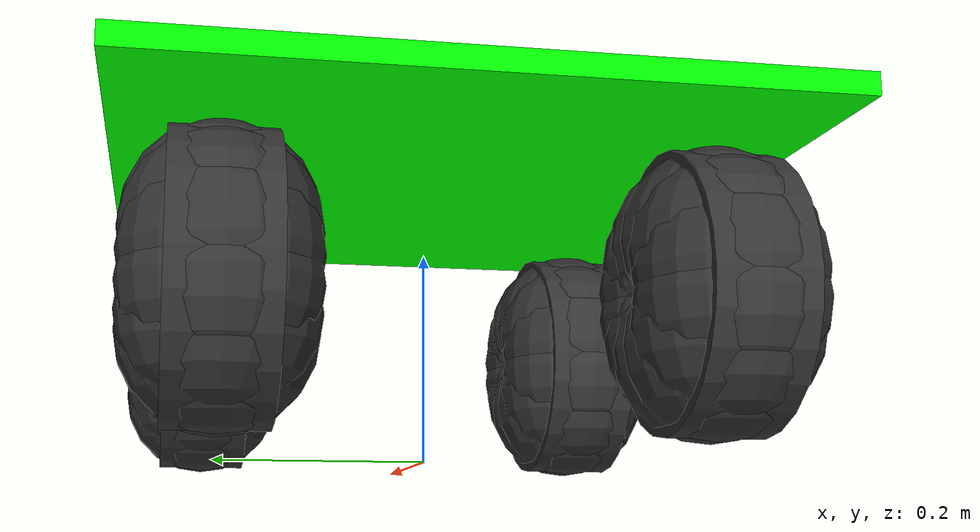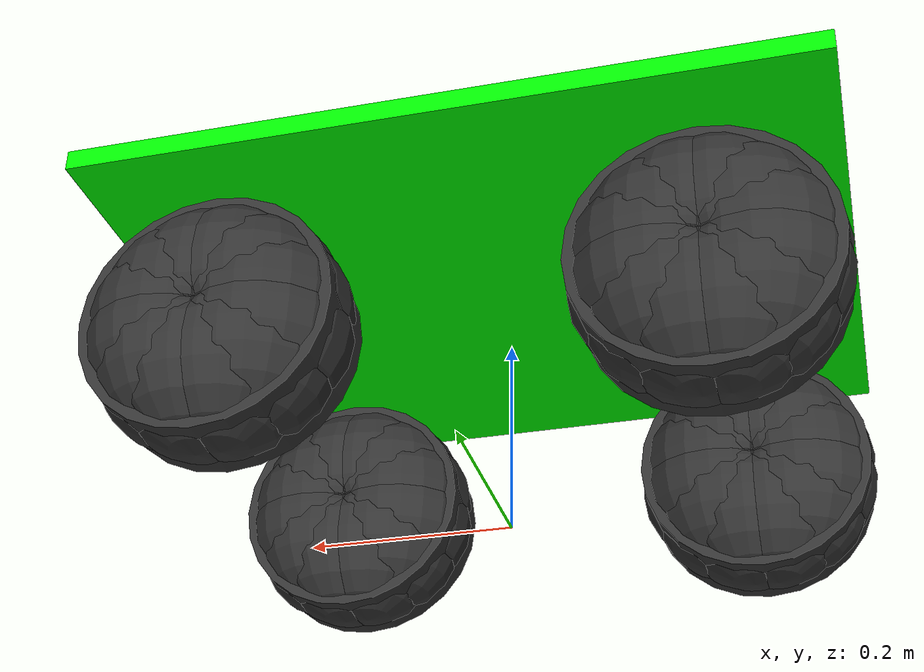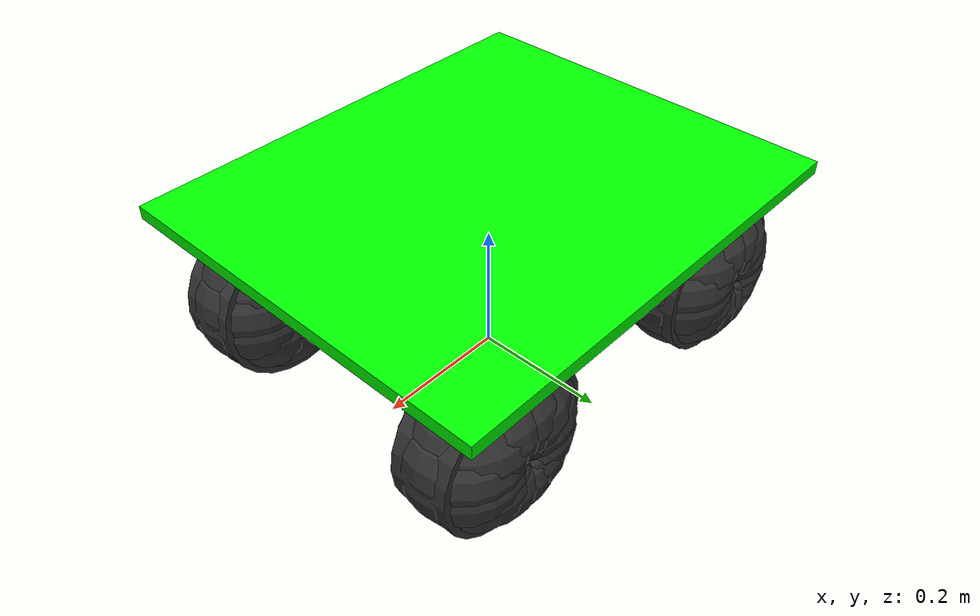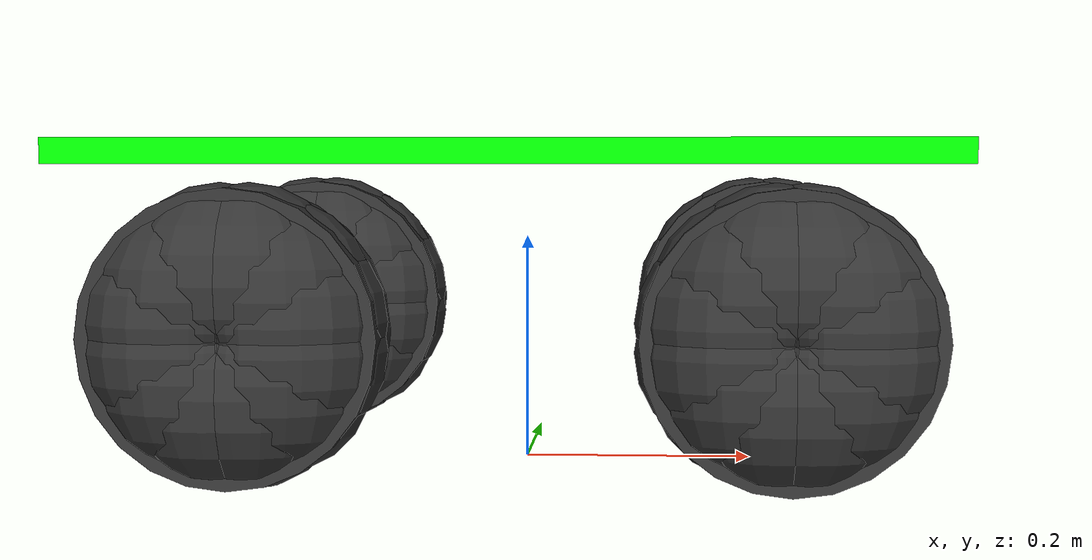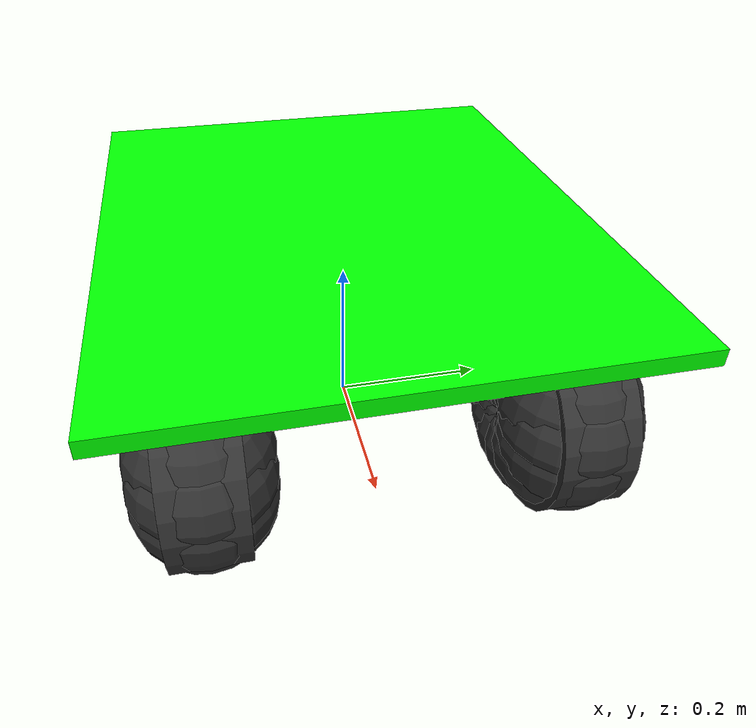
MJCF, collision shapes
<mujoco model="summit_xls">
    <compiler autolimits="true" angle="radian" inertiafromgeom="true"/>

    <asset>
        <mesh name="summit_xls_chapas_inox_tapas"   file="meshes/summit_xls/base_mobile_brand.stl" scale="1.0 1.0 0.7"/>
        <mesh name="summit_xls_chassis"             file="meshes/summit_xls/base_mobile.stl" scale="1.0 1.0 0.7"/>
        <mesh name="summit_xls_omni_wheel_1"        file="meshes/wheels/omni_wheel_1.stl"/>
        <mesh name="summit_xls_omni_wheel_2"        file="meshes/wheels/omni_wheel_2.stl"/>
    </asset>

    <worldbody>
        <!-- Summit XL Steel Mobile Base -->
            <!-- BASE_LINK -->
            <body name="base" pos="0 0 0.127">
                <inertial pos="0 0 0" quat="1 0 0 0" mass="125.0" diaginertia="1.391 6.853 6.125" />
                <geom type="mesh" rgba="0 0 0 1" mesh="summit_xls_chassis" contype="0" conaffinity="0" group="1"/>
                <geom type="box" size="0.35 0.3 0.01" pos="0.0 0 0.148566" quat="1 0 0 0" rgba="0 1 0 0" contype="1" conaffinity="1"/>

                <!-- CHAPAS INOX TAPAS -->
                <geom type="mesh" pos="0.0 0 0.155" quat="1 0 0 0" rgba="0.5 0.5 0.5 1" mesh="summit_xls_chapas_inox_tapas" contype="0" conaffinity="0" group="2"/>

                <!-- Battery -->

                <!-- Wheels -->
                <body name="front_right_wheel_intermediate_link" pos="0.2225 -0.2045 0">
                    <inertial pos="0 0 0" quat="0.707107 0 0 0.707107" mass="6.5" diaginertia="0.0524193 0.0303095 0.0303095" />
                    <joint name="front_right_wheel_rolling_joint" pos="0 0 0" axis="0 1 0" />
                    <geom size="0.120 0.0435" quat="0.707107 0.707107 0 0" type="cylinder" rgba="0.2 0.2 0.2 0.5" contype="1" conaffinity="0" group="3" />
                    <geom type="mesh" mesh="summit_xls_omni_wheel_2" contype="0" conaffinity="0" group="2" rgba="0.2 0.2 0.2 1"/>

                    <body name="front_right_roller_0_link" pos="0.04385159698893431 0.0 0.011749999999999998">
                        <joint name="front_right_slipping_0_joint" type="hinge" pos="0 0 0" axis="-0.006296806022131382 0.0435 0.023499999999999997" damping="0.1" limited="false" actuatorfrclimited="false"/>
                        <inertial pos="0 0 0" quat="0.711549 0.711549 0 0 " mass="0.001" diaginertia="0.00001 0.00001 0.00001" />
                        <geom size="0.08" quat="1 0 0 0" type="sphere" rgba="0.2 0.2 0.2 1" contype="1" conaffinity="0" group="3"/>
                    </body>

                    <body name="front_right_roller_1_link" pos="0.03210159698893431 0.0 0.032101596988934306">
                        <joint name="front_right_slipping_1_joint" type="hinge" pos="0 0 0" axis="-0.01720319397786861 0.0435 0.017203193977868615" damping="0.1" limited="false" actuatorfrclimited="false"/>
                        <inertial pos="0 0 0" quat="0.711549 0.711549 0 0 " mass="0.001" diaginertia="0.00001 0.00001 0.00001" />
                        <geom size="0.08" quat="1 0 0 0" type="sphere" rgba="0.2 0.2 0.2 1" contype="1" conaffinity="0" group="3"/>
                    </body>

                    <body name="front_right_roller_2_link" pos="0.011750000000000005 0.0 0.0438515969889343">
                        <joint name="front_right_slipping_2_joint" type="hinge" pos="0 0 0" axis="-0.023500000000000004 0.0435 0.006296806022131389" damping="0.1" limited="false" actuatorfrclimited="false"/>
                        <inertial pos="0 0 0" quat="0.711549 0.711549 0 0 " mass="0.001" diaginertia="0.00001 0.00001 0.00001" />
                        <geom size="0.08" quat="1 0 0 0" type="sphere" rgba="0.2 0.2 0.2 1" contype="1" conaffinity="0" group="3"/>
                    </body>

                    <body name="front_right_roller_3_link" pos="-0.011749999999999993 0.0 0.04385159698893431">
                        <joint name="front_right_slipping_3_joint" type="hinge" pos="0 0 0" axis="-0.023499999999999993 0.0435 -0.006296806022131382" damping="0.1" limited="false" actuatorfrclimited="false"/>
                        <inertial pos="0 0 0" quat="0.711549 0.711549 0 0 " mass="0.001" diaginertia="0.00001 0.00001 0.00001" />
                        <geom size="0.08" quat="1 0 0 0" type="sphere" rgba="0.2 0.2 0.2 1" contype="1" conaffinity="0" group="3"/>
                    </body>

                    <body name="front_right_roller_4_link" pos="-0.0321015969889343 0.0 0.03210159698893432">
                        <joint name="front_right_slipping_4_joint" type="hinge" pos="0 0 0" axis="-0.01720319397786862 0.0435 -0.0172031939778686" damping="0.1" limited="false" actuatorfrclimited="false"/>
                        <inertial pos="0 0 0" quat="0.711549 0.711549 0 0 " mass="0.001" diaginertia="0.00001 0.00001 0.00001" />
                        <geom size="0.08" quat="1 0 0 0" type="sphere" rgba="0.2 0.2 0.2 1" contype="1" conaffinity="0" group="3"/>
                    </body>

                    <body name="front_right_roller_5_link" pos="-0.0438515969889343 0.0 0.011750000000000012">
                        <joint name="front_right_slipping_5_joint" type="hinge" pos="0 0 0" axis="-0.006296806022131389 0.0435 -0.02350000000000001" damping="0.1" limited="false" actuatorfrclimited="false"/>
                        <inertial pos="0 0 0" quat="0.711549 0.711549 0 0 " mass="0.001" diaginertia="0.00001 0.00001 0.00001" />
                        <geom size="0.08" quat="1 0 0 0" type="sphere" rgba="0.2 0.2 0.2 1" contype="1" conaffinity="0" group="3"/>
                    </body>

                    <body name="front_right_roller_6_link" pos="-0.043851596988934316 0.0 -0.011749999999999991">
                        <joint name="front_right_slipping_6_joint" type="hinge" pos="0 0 0" axis="0.006296806022131375 0.0435 -0.023499999999999993" damping="0.1" limited="false" actuatorfrclimited="false"/>
                        <inertial pos="0 0 0" quat="0.711549 0.711549 0 0 " mass="0.001" diaginertia="0.00001 0.00001 0.00001" />
                        <geom size="0.08" quat="1 0 0 0" type="sphere" rgba="0.2 0.2 0.2 1" contype="1" conaffinity="0" group="3"/>
                    </body>

                    <body name="front_right_roller_7_link" pos="-0.03210159698893432 0.0 -0.03210159698893429">
                        <joint name="front_right_slipping_7_joint" type="hinge" pos="0 0 0" axis="0.017203193977868604 0.0435 -0.017203193977868618" damping="0.1" limited="false" actuatorfrclimited="false"/>
                        <inertial pos="0 0 0" quat="0.711549 0.711549 0 0 " mass="0.001" diaginertia="0.00001 0.00001 0.00001" />
                        <geom size="0.08" quat="1 0 0 0" type="sphere" rgba="0.2 0.2 0.2 1" contype="1" conaffinity="0" group="3"/>
                    </body>

                    <body name="front_right_roller_8_link" pos="-0.011750000000000014 0.0 -0.0438515969889343">
                        <joint name="front_right_slipping_8_joint" type="hinge" pos="0 0 0" axis="0.023500000000000014 0.0435 -0.006296806022131396" damping="0.1" limited="false" actuatorfrclimited="false"/>
                        <inertial pos="0 0 0" quat="0.711549 0.711549 0 0 " mass="0.001" diaginertia="0.00001 0.00001 0.00001" />
                        <geom size="0.08" quat="1 0 0 0" type="sphere" rgba="0.2 0.2 0.2 1" contype="1" conaffinity="0" group="3"/>
                    </body>

                    <body name="front_right_roller_9_link" pos="0.01174999999999998 0.0 -0.043851596988934316">
                        <joint name="front_right_slipping_9_joint" type="hinge" pos="0 0 0" axis="0.023499999999999976 0.0435 0.006296806022131368" damping="0.1" limited="false" actuatorfrclimited="false"/>
                        <inertial pos="0 0 0" quat="0.711549 0.711549 0 0 " mass="0.001" diaginertia="0.00001 0.00001 0.00001" />
                        <geom size="0.08" quat="1 0 0 0" type="sphere" rgba="0.2 0.2 0.2 1" contype="1" conaffinity="0" group="3"/>
                    </body>

                    <body name="front_right_roller_10_link" pos="0.032101596988934285 0.0 -0.032101596988934326">
                        <joint name="front_right_slipping_10_joint" type="hinge" pos="0 0 0" axis="0.017203193977868635 0.0435 0.01720319397786861" damping="0.1" limited="false" actuatorfrclimited="false"/>
                        <inertial pos="0 0 0" quat="0.711549 0.711549 0 0 " mass="0.001" diaginertia="0.00001 0.00001 0.00001" />
                        <geom size="0.08" quat="1 0 0 0" type="sphere" rgba="0.2 0.2 0.2 1" contype="1" conaffinity="0" group="3"/>
                    </body>

                    <body name="front_right_roller_11_link" pos="0.0438515969889343 0.0 -0.01175000000000001">
                        <joint name="front_right_slipping_11_joint" type="hinge" pos="0 0 0" axis="0.006296806022131396 0.0435 0.02350000000000002" damping="0.1" limited="false" actuatorfrclimited="false"/>
                        <inertial pos="0 0 0" quat="0.711549 0.711549 0 0 " mass="0.001" diaginertia="0.00001 0.00001 0.00001" />
                        <geom size="0.08" quat="1 0 0 0" type="sphere" rgba="0.2 0.2 0.2 1" contype="1" conaffinity="0" group="3"/>
                    </body>
                </body>

                <body name="front_left_wheel_intermediate_link" pos="0.2225 0.2045 0">
                    <inertial pos="0 0 0" quat="0.707107 0 0 0.707107" mass="6.5" diaginertia="0.0524193 0.0303095 0.0303095" />
                    <joint name="front_left_wheel_rolling_joint" pos="0 0 0" axis="0 1 0" />
                    <geom size="0.120 0.0435" quat="0.707107 0.707107 0 0" type="cylinder" rgba="0.2 0.2 0.2 0.5" contype="1" conaffinity="0" group="3"/>
                    <geom type="mesh" mesh="summit_xls_omni_wheel_1" contype="0" conaffinity="0" group="2" rgba="0.2 0.2 0.2 1"/>

                    <body name="front_left_roller_0_link" pos="0.0438515969889343 0.0 -0.01175000000000001">
                        <joint name="front_left_slipping_0_joint" type="hinge" pos="0 0 0" axis="-0.006296806022131396 0.0435 -0.02350000000000002" damping="0.1" limited="false" actuatorfrclimited="false"/>
                        <inertial pos="0 0 0" quat="0.711549 0.711549 0 0 " mass="0.001" diaginertia="0.00001 0.00001 0.00001" />
                        <geom size="0.08" quat="1 0 0 0" type="sphere" rgba="0.2 0.2 0.2 1" contype="1" conaffinity="0" group="3"/>
                    </body>

                    <body name="front_left_roller_1_link" pos="0.04385159698893431 0.0 0.011749999999999998">
                        <joint name="front_left_slipping_1_joint" type="hinge" pos="0 0 0" axis="0.006296806022131382 0.0435 -0.023499999999999997" damping="0.1" limited="false" actuatorfrclimited="false"/>
                        <inertial pos="0 0 0" quat="0.711549 0.711549 0 0 " mass="0.001" diaginertia="0.00001 0.00001 0.00001" />
                        <geom size="0.08" quat="1 0 0 0" type="sphere" rgba="0.2 0.2 0.2 1" contype="1" conaffinity="0" group="3"/>
                    </body>

                    <body name="front_left_roller_2_link" pos="0.03210159698893431 0.0 0.032101596988934306">
                        <joint name="front_left_slipping_2_joint" type="hinge" pos="0 0 0" axis="0.01720319397786861 0.0435 -0.017203193977868615" damping="0.1" limited="false" actuatorfrclimited="false"/>
                        <inertial pos="0 0 0" quat="0.711549 0.711549 0 0 " mass="0.001" diaginertia="0.00001 0.00001 0.00001" />
                        <geom size="0.08" quat="1 0 0 0" type="sphere" rgba="0.2 0.2 0.2 1" contype="1" conaffinity="0" group="3"/>
                    </body>

                    <body name="front_left_roller_3_link" pos="0.011750000000000005 0.0 0.0438515969889343">
                        <joint name="front_left_slipping_3_joint" type="hinge" pos="0 0 0" axis="0.023500000000000004 0.0435 -0.006296806022131389" damping="0.1" limited="false" actuatorfrclimited="false"/>
                        <inertial pos="0 0 0" quat="0.711549 0.711549 0 0 " mass="0.001" diaginertia="0.00001 0.00001 0.00001" />
                        <geom size="0.08" quat="1 0 0 0" type="sphere" rgba="0.2 0.2 0.2 1" contype="1" conaffinity="0" group="3"/>
                    </body>

                    <body name="front_left_roller_4_link" pos="-0.011749999999999993 0.0 0.04385159698893431">
                        <joint name="front_left_slipping_4_joint" type="hinge" pos="0 0 0" axis="0.023499999999999993 0.0435 0.006296806022131382" damping="0.1" limited="false" actuatorfrclimited="false"/>
                        <inertial pos="0 0 0" quat="0.711549 0.711549 0 0 " mass="0.001" diaginertia="0.00001 0.00001 0.00001" />
                        <geom size="0.08" quat="1 0 0 0" type="sphere" rgba="0.2 0.2 0.2 1" contype="1" conaffinity="0" group="3"/>
                    </body>

                    <body name="front_left_roller_5_link" pos="-0.0321015969889343 0.0 0.03210159698893432">
                        <joint name="front_left_slipping_5_joint" type="hinge" pos="0 0 0" axis="0.01720319397786862 0.0435 0.0172031939778686" damping="0.1" limited="false" actuatorfrclimited="false"/>
                        <inertial pos="0 0 0" quat="0.711549 0.711549 0 0 " mass="0.001" diaginertia="0.00001 0.00001 0.00001" />
                        <geom size="0.08" quat="1 0 0 0" type="sphere" rgba="0.2 0.2 0.2 1" contype="1" conaffinity="0" group="3"/>
                    </body>

                    <body name="front_left_roller_6_link" pos="-0.0438515969889343 0.0 0.01175000000000001">
                        <joint name="front_left_slipping_6_joint" type="hinge" pos="0 0 0" axis="0.006296806022131389 0.0435 0.02350000000000001" damping="0.1" limited="false" actuatorfrclimited="false"/>
                        <inertial pos="0 0 0" quat="0.711549 0.711549 0 0 " mass="0.001" diaginertia="0.00001 0.00001 0.00001" />
                        <geom size="0.08" quat="1 0 0 0" type="sphere" rgba="0.2 0.2 0.2 1" contype="1" conaffinity="0" group="3"/>
                    </body>

                    <body name="front_left_roller_7_link" pos="-0.043851596988934316 0.0 -0.01174999999999999">
                        <joint name="front_left_slipping_7_joint" type="hinge" pos="0 0 0" axis="-0.006296806022131375 0.0435 0.023499999999999993" damping="0.1" limited="false" actuatorfrclimited="false"/>
                        <inertial pos="0 0 0" quat="0.711549 0.711549 0 0 " mass="0.001" diaginertia="0.00001 0.00001 0.00001" />
                        <geom size="0.08" quat="1 0 0 0" type="sphere" rgba="0.2 0.2 0.2 1" contype="1" conaffinity="0" group="3"/>
                    </body>

                    <body name="front_left_roller_8_link" pos="-0.03210159698893432 0.0 -0.03210159698893429">
                        <joint name="front_left_slipping_8_joint" type="hinge" pos="0 0 0" axis="-0.017203193977868604 0.0435 0.017203193977868618" damping="0.1" limited="false" actuatorfrclimited="false"/>
                        <inertial pos="0 0 0" quat="0.711549 0.711549 0 0 " mass="0.001" diaginertia="0.00001 0.00001 0.00001" />
                        <geom size="0.08" quat="1 0 0 0" type="sphere" rgba="0.2 0.2 0.2 1" contype="1" conaffinity="0" group="3"/>
                    </body>

                    <body name="front_left_roller_9_link" pos="-0.011750000000000016 0.0 -0.0438515969889343">
                        <joint name="front_left_slipping_9_joint" type="hinge" pos="0 0 0" axis="-0.023500000000000014 0.0435 0.006296806022131396" damping="0.1" limited="false" actuatorfrclimited="false"/>
                        <inertial pos="0 0 0" quat="0.711549 0.711549 0 0 " mass="0.001" diaginertia="0.00001 0.00001 0.00001" />
                        <geom size="0.08" quat="1 0 0 0" type="sphere" rgba="0.2 0.2 0.2 1" contype="1" conaffinity="0" group="3"/>
                    </body>

                    <body name="front_left_roller_10_link" pos="0.011749999999999981 0.0 -0.043851596988934316">
                        <joint name="front_left_slipping_10_joint" type="hinge" pos="0 0 0" axis="-0.023499999999999976 0.0435 -0.006296806022131368" damping="0.1" limited="false" actuatorfrclimited="false"/>
                        <inertial pos="0 0 0" quat="0.711549 0.711549 0 0 " mass="0.001" diaginertia="0.00001 0.00001 0.00001" />
                        <geom size="0.08" quat="1 0 0 0" type="sphere" rgba="0.2 0.2 0.2 1" contype="1" conaffinity="0" group="3"/>
                    </body>

                    <body name="front_left_roller_11_link" pos="0.032101596988934285 0.0 -0.032101596988934326">
                        <joint name="front_left_slipping_11_joint" type="hinge" pos="0 0 0" axis="-0.017203193977868635 0.0435 -0.01720319397786861" damping="0.1" limited="false" actuatorfrclimited="false"/>
                        <inertial pos="0 0 0" quat="0.711549 0.711549 0 0 " mass="0.001" diaginertia="0.00001 0.00001 0.00001" />
                        <geom size="0.08" quat="1 0 0 0" type="sphere" rgba="0.2 0.2 0.2 1" contype="1" conaffinity="0" group="3"/>
                    </body>
                </body>

                <body name="back_right_wheel_intermediate_link" pos="-0.2225 -0.2045 0">
                    <inertial pos="0 0 0" quat="0.707107 0 0 0.707107" mass="6.5" diaginertia="0.0524193 0.0303095 0.0303095" />
                    <joint name="back_right_wheel_rolling_joint" pos="0 0 0" axis="0 1 0" />
                    <geom size="0.120 0.0435" quat="0.707107 0.707107 0 0" type="cylinder" rgba="0.2 0.2 0.2 0.5" contype="1" conaffinity="0" group="3"/>
                    <geom type="mesh" mesh="summit_xls_omni_wheel_1" contype="0" conaffinity="0" group="2" rgba="0.2 0.2 0.2 1"/>

                    <body name="back_right_roller_0_link" pos="0.0438515969889343 0.0 -0.01175000000000001">
                        <joint name="back_right_slipping_0_joint" type="hinge" pos="0 0 0" axis="-0.006296806022131396 0.0435 -0.02350000000000002" damping="0.1" limited="false" actuatorfrclimited="false"/>
                        <inertial pos="0 0 0" quat="0.711549 0.711549 0 0 " mass="0.001" diaginertia="0.00001 0.00001 0.00001" />
                        <geom size="0.08" quat="1 0 0 0" type="sphere" rgba="0.2 0.2 0.2 1" contype="1" conaffinity="0" group="3"/>
                    </body>

                    <body name="back_right_roller_1_link" pos="0.04385159698893431 0.0 0.011749999999999998">
                        <joint name="back_right_slipping_1_joint" type="hinge" pos="0 0 0" axis="0.006296806022131382 0.0435 -0.023499999999999997" damping="0.1" limited="false" actuatorfrclimited="false"/>
                        <inertial pos="0 0 0" quat="0.711549 0.711549 0 0 " mass="0.001" diaginertia="0.00001 0.00001 0.00001" />
                        <geom size="0.08" quat="1 0 0 0" type="sphere" rgba="0.2 0.2 0.2 1" contype="1" conaffinity="0" group="3"/>
                    </body>

                    <body name="back_right_roller_2_link" pos="0.03210159698893431 0.0 0.032101596988934306">
                        <joint name="back_right_slipping_2_joint" type="hinge" pos="0 0 0" axis="0.01720319397786861 0.0435 -0.017203193977868615" damping="0.1" limited="false" actuatorfrclimited="false"/>
                        <inertial pos="0 0 0" quat="0.711549 0.711549 0 0 " mass="0.001" diaginertia="0.00001 0.00001 0.00001" />
                        <geom size="0.08" quat="1 0 0 0" type="sphere" rgba="0.2 0.2 0.2 1" contype="1" conaffinity="0" group="3"/>
                    </body>

                    <body name="back_right_roller_3_link" pos="0.011750000000000005 0.0 0.0438515969889343">
                        <joint name="back_right_slipping_3_joint" type="hinge" pos="0 0 0" axis="0.023500000000000004 0.0435 -0.006296806022131389" damping="0.1" limited="false" actuatorfrclimited="false"/>
                        <inertial pos="0 0 0" quat="0.711549 0.711549 0 0 " mass="0.001" diaginertia="0.00001 0.00001 0.00001" />
                        <geom size="0.08" quat="1 0 0 0" type="sphere" rgba="0.2 0.2 0.2 1" contype="1" conaffinity="0" group="3"/>
                    </body>

                    <body name="back_right_roller_4_link" pos="-0.011749999999999993 0.0 0.04385159698893431">
                        <joint name="back_right_slipping_4_joint" type="hinge" pos="0 0 0" axis="0.023499999999999993 0.0435 0.006296806022131382" damping="0.1" limited="false" actuatorfrclimited="false"/>
                        <inertial pos="0 0 0" quat="0.711549 0.711549 0 0 " mass="0.001" diaginertia="0.00001 0.00001 0.00001" />
                        <geom size="0.08" quat="1 0 0 0" type="sphere" rgba="0.2 0.2 0.2 1" contype="1" conaffinity="0" group="3"/>
                    </body>

                    <body name="back_right_roller_5_link" pos="-0.0321015969889343 0.0 0.03210159698893432">
                        <joint name="back_right_slipping_5_joint" type="hinge" pos="0 0 0" axis="0.01720319397786862 0.0435 0.0172031939778686" damping="0.1" limited="false" actuatorfrclimited="false"/>
                        <inertial pos="0 0 0" quat="0.711549 0.711549 0 0 " mass="0.001" diaginertia="0.00001 0.00001 0.00001" />
                        <geom size="0.08" quat="1 0 0 0" type="sphere" rgba="0.2 0.2 0.2 1" contype="1" conaffinity="0" group="3"/>
                    </body>

                    <body name="back_right_roller_6_link" pos="-0.0438515969889343 0.0 0.01175000000000001">
                        <joint name="back_right_slipping_6_joint" type="hinge" pos="0 0 0" axis="0.006296806022131389 0.0435 0.02350000000000001" damping="0.1" limited="false" actuatorfrclimited="false"/>
                        <inertial pos="0 0 0" quat="0.711549 0.711549 0 0 " mass="0.001" diaginertia="0.00001 0.00001 0.00001" />
                        <geom size="0.08" quat="1 0 0 0" type="sphere" rgba="0.2 0.2 0.2 1" contype="1" conaffinity="0" group="3"/>
                    </body>

                    <body name="back_right_roller_7_link" pos="-0.043851596988934316 0.0 -0.01174999999999999">
                        <joint name="back_right_slipping_7_joint" type="hinge" pos="0 0 0" axis="-0.006296806022131375 0.0435 0.023499999999999993" damping="0.1" limited="false" actuatorfrclimited="false"/>
                        <inertial pos="0 0 0" quat="0.711549 0.711549 0 0 " mass="0.001" diaginertia="0.00001 0.00001 0.00001" />
                        <geom size="0.08" quat="1 0 0 0" type="sphere" rgba="0.2 0.2 0.2 1" contype="1" conaffinity="0" group="3"/>
                    </body>

                    <body name="back_right_roller_8_link" pos="-0.03210159698893432 0.0 -0.03210159698893429">
                        <joint name="back_right_slipping_8_joint" type="hinge" pos="0 0 0" axis="-0.017203193977868604 0.0435 0.017203193977868618" damping="0.1" limited="false" actuatorfrclimited="false"/>
                        <inertial pos="0 0 0" quat="0.711549 0.711549 0 0 " mass="0.001" diaginertia="0.00001 0.00001 0.00001" />
                        <geom size="0.08" quat="1 0 0 0" type="sphere" rgba="0.2 0.2 0.2 1" contype="1" conaffinity="0" group="3"/>
                    </body>

                    <body name="back_right_roller_9_link" pos="-0.011750000000000016 0.0 -0.0438515969889343">
                        <joint name="back_right_slipping_9_joint" type="hinge" pos="0 0 0" axis="-0.023500000000000014 0.0435 0.006296806022131396" damping="0.1" limited="false" actuatorfrclimited="false"/>
                        <inertial pos="0 0 0" quat="0.711549 0.711549 0 0 " mass="0.001" diaginertia="0.00001 0.00001 0.00001" />
                        <geom size="0.08" quat="1 0 0 0" type="sphere" rgba="0.2 0.2 0.2 1" contype="1" conaffinity="0" group="3"/>
                    </body>

                    <body name="back_right_roller_10_link" pos="0.011749999999999981 0.0 -0.043851596988934316">
                        <joint name="back_right_slipping_10_joint" type="hinge" pos="0 0 0" axis="-0.023499999999999976 0.0435 -0.006296806022131368" damping="0.1" limited="false" actuatorfrclimited="false"/>
                        <inertial pos="0 0 0" quat="0.711549 0.711549 0 0 " mass="0.001" diaginertia="0.00001 0.00001 0.00001" />
                        <geom size="0.08" quat="1 0 0 0" type="sphere" rgba="0.2 0.2 0.2 1" contype="1" conaffinity="0" group="3"/>
                    </body>

                    <body name="back_right_roller_11_link" pos="0.032101596988934285 0.0 -0.032101596988934326">
                        <joint name="back_right_slipping_11_joint" type="hinge" pos="0 0 0" axis="-0.017203193977868635 0.0435 -0.01720319397786861" damping="0.1" limited="false" actuatorfrclimited="false"/>
                        <inertial pos="0 0 0" quat="0.711549 0.711549 0 0 " mass="0.001" diaginertia="0.00001 0.00001 0.00001" />
                        <geom size="0.08" quat="1 0 0 0" type="sphere" rgba="0.2 0.2 0.2 1" contype="1" conaffinity="0" group="3"/>
                    </body>
                </body>

                <body name="back_left_wheel_intermediate_link" pos="-0.2225 0.2045 0">
                    <inertial pos="0 0 0" quat="0.707107 0 0 0.707107" mass="6.5" diaginertia="0.0524193 0.0303095 0.0303095" />
                    <joint name="back_left_wheel_rolling_joint" pos="0 0 0" axis="0 1 0" />
                    <geom size="0.120 0.0435" quat="0.707107 0.707107 0 0" type="cylinder" rgba="0.2 0.2 0.2 0.5" contype="1" conaffinity="0" group="3"/>
                    <geom type="mesh" mesh="summit_xls_omni_wheel_2" contype="0" conaffinity="0" group="2" rgba="0.2 0.2 0.2 1"/>

                    <body name="back_left_roller_0_link" pos="0.04385159698893431 0.0 0.011749999999999998">
                        <joint name="back_left_slipping_0_joint" type="hinge" pos="0 0 0" axis="-0.006296806022131382 0.0435 0.023499999999999997" damping="0.1" limited="false" actuatorfrclimited="false"/>
                        <inertial pos="0 0 0" quat="0.711549 0.711549 0 0 " mass="0.001" diaginertia="0.00001 0.00001 0.00001" />
                        <geom size="0.08" quat="1 0 0 0" type="sphere" rgba="0.2 0.2 0.2 1" contype="1" conaffinity="0" group="3"/>
                    </body>

                    <body name="back_left_roller_1_link" pos="0.03210159698893431 0.0 0.032101596988934306">
                        <joint name="back_left_slipping_1_joint" type="hinge" pos="0 0 0" axis="-0.01720319397786861 0.0435 0.017203193977868615" damping="0.1" limited="false" actuatorfrclimited="false"/>
                        <inertial pos="0 0 0" quat="0.711549 0.711549 0 0 " mass="0.001" diaginertia="0.00001 0.00001 0.00001" />
                        <geom size="0.08" quat="1 0 0 0" type="sphere" rgba="0.2 0.2 0.2 1" contype="1" conaffinity="0" group="3"/>
                    </body>

                    <body name="back_left_roller_2_link" pos="0.011750000000000005 0.0 0.0438515969889343">
                        <joint name="back_left_slipping_2_joint" type="hinge" pos="0 0 0" axis="-0.023500000000000004 0.0435 0.006296806022131389" damping="0.1" limited="false" actuatorfrclimited="false"/>
                        <inertial pos="0 0 0" quat="0.711549 0.711549 0 0 " mass="0.001" diaginertia="0.00001 0.00001 0.00001" />
                        <geom size="0.08" quat="1 0 0 0" type="sphere" rgba="0.2 0.2 0.2 1" contype="1" conaffinity="0" group="3"/>
                    </body>

                    <body name="back_left_roller_3_link" pos="-0.011749999999999993 0.0 0.04385159698893431">
                        <joint name="back_left_slipping_3_joint" type="hinge" pos="0 0 0" axis="-0.023499999999999993 0.0435 -0.006296806022131382" damping="0.1" limited="false" actuatorfrclimited="false"/>
                        <inertial pos="0 0 0" quat="0.711549 0.711549 0 0 " mass="0.001" diaginertia="0.00001 0.00001 0.00001" />
                        <geom size="0.08" quat="1 0 0 0" type="sphere" rgba="0.2 0.2 0.2 1" contype="1" conaffinity="0" group="3"/>
                    </body>

                    <body name="back_left_roller_4_link" pos="-0.0321015969889343 0.0 0.03210159698893432">
                        <joint name="back_left_slipping_4_joint" type="hinge" pos="0 0 0" axis="-0.01720319397786862 0.0435 -0.0172031939778686" damping="0.1" limited="false" actuatorfrclimited="false"/>
                        <inertial pos="0 0 0" quat="0.711549 0.711549 0 0 " mass="0.001" diaginertia="0.00001 0.00001 0.00001" />
                        <geom size="0.08" quat="1 0 0 0" type="sphere" rgba="0.2 0.2 0.2 1" contype="1" conaffinity="0" group="3"/>
                    </body>

                    <body name="back_left_roller_5_link" pos="-0.0438515969889343 0.0 0.011750000000000012">
                        <joint name="back_left_slipping_5_joint" type="hinge" pos="0 0 0" axis="-0.006296806022131389 0.0435 -0.02350000000000001" damping="0.1" limited="false" actuatorfrclimited="false"/>
                        <inertial pos="0 0 0" quat="0.711549 0.711549 0 0 " mass="0.001" diaginertia="0.00001 0.00001 0.00001" />
                        <geom size="0.08" quat="1 0 0 0" type="sphere" rgba="0.2 0.2 0.2 1" contype="1" conaffinity="0" group="3"/>
                    </body>

                    <body name="back_left_roller_6_link" pos="-0.043851596988934316 0.0 -0.011749999999999991">
                        <joint name="back_left_slipping_6_joint" type="hinge" pos="0 0 0" axis="0.006296806022131375 0.0435 -0.023499999999999993" damping="0.1" limited="false" actuatorfrclimited="false"/>
                        <inertial pos="0 0 0" quat="0.711549 0.711549 0 0 " mass="0.001" diaginertia="0.00001 0.00001 0.00001" />
                        <geom size="0.08" quat="1 0 0 0" type="sphere" rgba="0.2 0.2 0.2 1" contype="1" conaffinity="0" group="3"/>
                    </body>

                    <body name="back_left_roller_7_link" pos="-0.03210159698893432 0.0 -0.03210159698893429">
                        <joint name="back_left_slipping_7_joint" type="hinge" pos="0 0 0" axis="0.017203193977868604 0.0435 -0.017203193977868618" damping="0.1" limited="false" actuatorfrclimited="false"/>
                        <inertial pos="0 0 0" quat="0.711549 0.711549 0 0 " mass="0.001" diaginertia="0.00001 0.00001 0.00001" />
                        <geom size="0.08" quat="1 0 0 0" type="sphere" rgba="0.2 0.2 0.2 1" contype="1" conaffinity="0" group="3"/>
                    </body>

                    <body name="back_left_roller_8_link" pos="-0.011750000000000014 0.0 -0.0438515969889343">
                        <joint name="back_left_slipping_8_joint" type="hinge" pos="0 0 0" axis="0.023500000000000014 0.0435 -0.006296806022131396" damping="0.1" limited="false" actuatorfrclimited="false"/>
                        <inertial pos="0 0 0" quat="0.711549 0.711549 0 0 " mass="0.001" diaginertia="0.00001 0.00001 0.00001" />
                        <geom size="0.08" quat="1 0 0 0" type="sphere" rgba="0.2 0.2 0.2 1" contype="1" conaffinity="0" group="3"/>
                    </body>

                    <body name="back_left_roller_9_link" pos="0.01174999999999998 0.0 -0.043851596988934316">
                        <joint name="back_left_slipping_9_joint" type="hinge" pos="0 0 0" axis="0.023499999999999976 0.0435 0.006296806022131368" damping="0.1" limited="false" actuatorfrclimited="false"/>
                        <inertial pos="0 0 0" quat="0.711549 0.711549 0 0 " mass="0.001" diaginertia="0.00001 0.00001 0.00001" />
                        <geom size="0.08" quat="1 0 0 0" type="sphere" rgba="0.2 0.2 0.2 1" contype="1" conaffinity="0" group="3"/>
                    </body>

                    <body name="back_left_roller_10_link" pos="0.032101596988934285 0.0 -0.032101596988934326">
                        <joint name="back_left_slipping_10_joint" type="hinge" pos="0 0 0" axis="0.017203193977868635 0.0435 0.01720319397786861" damping="0.1" limited="false" actuatorfrclimited="false"/>
                        <inertial pos="0 0 0" quat="0.711549 0.711549 0 0 " mass="0.001" diaginertia="0.00001 0.00001 0.00001" />
                        <geom size="0.08" quat="1 0 0 0" type="sphere" rgba="0.2 0.2 0.2 1" contype="1" conaffinity="0" group="3"/>
                    </body>

                    <body name="back_left_roller_11_link" pos="0.0438515969889343 0.0 -0.01175000000000001">
                        <joint name="back_left_slipping_11_joint" type="hinge" pos="0 0 0" axis="0.006296806022131396 0.0435 0.02350000000000002" damping="0.1" limited="false" actuatorfrclimited="false"/>
                        <inertial pos="0 0 0" quat="0.711549 0.711549 0 0 " mass="0.001" diaginertia="0.00001 0.00001 0.00001" />
                        <geom size="0.08" quat="1 0 0 0" type="sphere" rgba="0.2 0.2 0.2 1" contype="1" conaffinity="0" group="3"/>
                    </body>
                </body>
            </body>
    </worldbody>

    <actuator>
        <motor name="front_right_wheel_rolling_joint" joint="front_right_wheel_rolling_joint" ctrlrange="-50 50"/>
        <motor name="front_left_wheel_rolling_joint"  joint="front_left_wheel_rolling_joint"  ctrlrange="-50 50"/>
        <motor name="back_right_wheel_rolling_joint"  joint="back_right_wheel_rolling_joint"  ctrlrange="-50 50"/>
        <motor name="back_left_wheel_rolling_joint"   joint="back_left_wheel_rolling_joint"   ctrlrange="-50 50"/>
    </actuator>
</mujoco>
